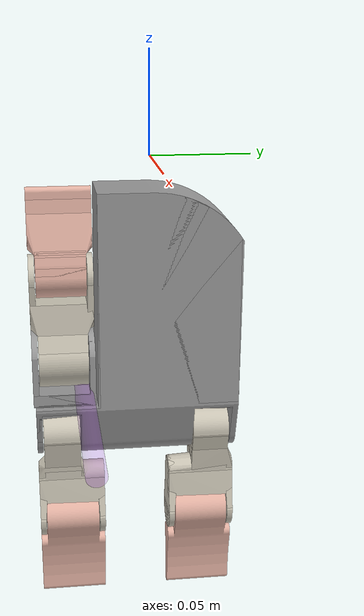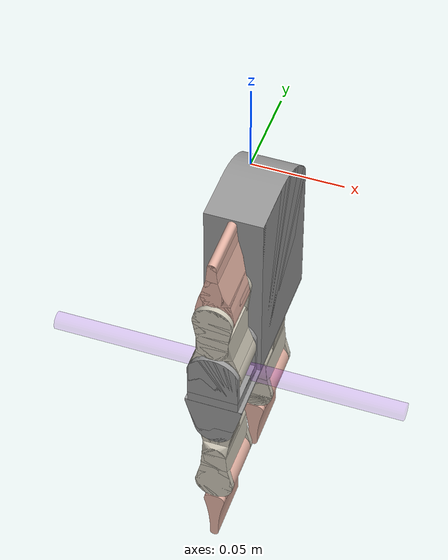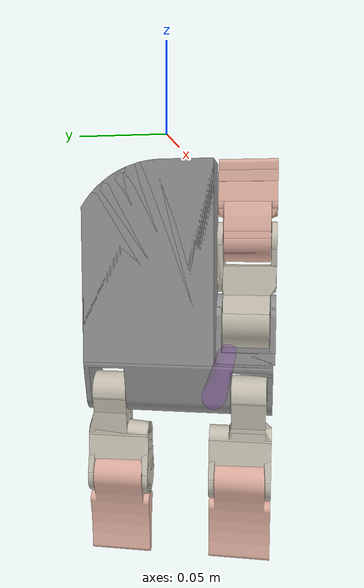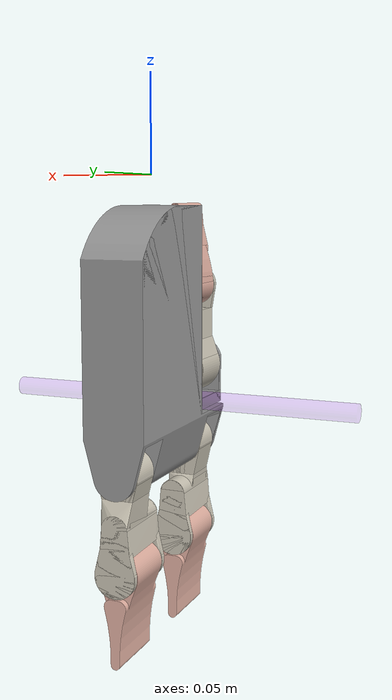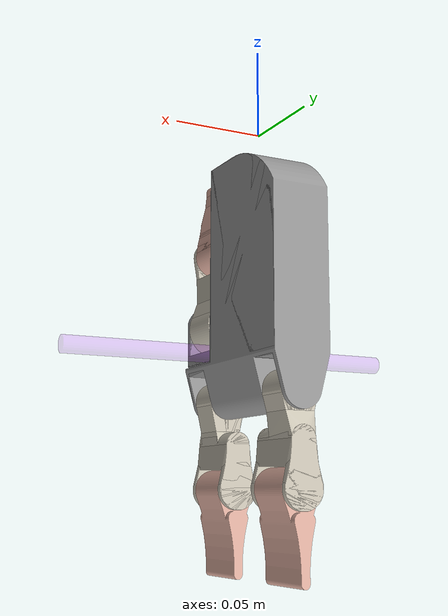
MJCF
<mujoco model="onshape">
    <compiler angle="radian" timestep="0.002"/>
    <size njmax="500" nconmax="100"/>

    <asset>
        <mesh name="palm" file="meshes/sslim_hand/palm.stl"/>
        <mesh name="thumb_base" file="meshes/sslim_hand/thumb_base.stl"/>
        <mesh name="thumb_proximal" file="meshes/sslim_hand/thumb_proximal.stl"/>
        <mesh name="thumb_distal" file="meshes/sslim_hand/thumb_distal.stl"/>
        <mesh name="proximal_left" file="meshes/sslim_hand/proximal_left.stl"/>
        <mesh name="distal_left" file="meshes/sslim_hand/distal_left.stl"/>
        <mesh name="proximal_right" file="meshes/sslim_hand/proximal_right.stl"/>
        <mesh name="distal_right" file="meshes/sslim_hand/distal_right.stl"/>

        <mesh name="palm_col_0" file="meshes/sslim_hand/palm_convex_piece_0.stl"/>
        <mesh name="palm_col_1" file="meshes/sslim_hand/palm_convex_piece_1.stl"/>
        <mesh name="palm_col_2" file="meshes/sslim_hand/palm_convex_piece_2.stl"/>
        <mesh name="palm_col_3" file="meshes/sslim_hand/palm_convex_piece_3.stl"/>
        <mesh name="palm_col_4" file="meshes/sslim_hand/palm_convex_piece_4.stl"/>
        <mesh name="palm_col_5" file="meshes/sslim_hand/palm_convex_piece_5.stl"/>
        <mesh name="palm_col_6" file="meshes/sslim_hand/palm_convex_piece_6.stl"/>

        <mesh name="thumb_base_col_0" file="meshes/sslim_hand/thumb_base_convex_piece_0.stl"/>
        <mesh name="thumb_base_col_1" file="meshes/sslim_hand/thumb_base_convex_piece_1.stl"/>
        <mesh name="thumb_base_col_2" file="meshes/sslim_hand/thumb_base_convex_piece_2.stl"/>

        <mesh name="thumb_proximal_col_0" file="meshes/sslim_hand/thumb_proximal_convex_piece_0.stl"/>
        <mesh name="thumb_proximal_col_1" file="meshes/sslim_hand/thumb_proximal_convex_piece_1.stl"/>
        <mesh name="thumb_proximal_col_2" file="meshes/sslim_hand/thumb_proximal_convex_piece_2.stl"/>
        <mesh name="thumb_proximal_col_3" file="meshes/sslim_hand/thumb_proximal_convex_piece_3.stl"/>

        <mesh name="thumb_distal_col_0" file="meshes/sslim_hand/thumb_distal_convex_piece_0.stl"/>
        <mesh name="thumb_distal_col_1" file="meshes/sslim_hand/thumb_distal_convex_piece_1.stl"/>
        <mesh name="thumb_distal_col_2" file="meshes/sslim_hand/thumb_distal_convex_piece_2.stl"/>
        <mesh name="thumb_distal_col_3" file="meshes/sslim_hand/thumb_distal_convex_piece_3.stl"/>
        <mesh name="thumb_distal_col_4" file="meshes/sslim_hand/thumb_distal_convex_piece_4.stl"/>

        <mesh name="proximal_left_col_0" file="meshes/sslim_hand/proximal_left_convex_piece_0.stl"/>
        <mesh name="proximal_left_col_1" file="meshes/sslim_hand/proximal_left_convex_piece_1.stl"/>
        <mesh name="proximal_left_col_2" file="meshes/sslim_hand/proximal_left_convex_piece_2.stl"/>
        <mesh name="proximal_left_col_3" file="meshes/sslim_hand/proximal_left_convex_piece_3.stl"/>
        <mesh name="proximal_left_col_4" file="meshes/sslim_hand/proximal_left_convex_piece_4.stl"/>
        <mesh name="proximal_left_col_5" file="meshes/sslim_hand/proximal_left_convex_piece_5.stl"/>

        <mesh name="proximal_right_col_0" file="meshes/sslim_hand/proximal_right_convex_piece_0.stl"/>
        <mesh name="proximal_right_col_1" file="meshes/sslim_hand/proximal_right_convex_piece_1.stl"/>
        <mesh name="proximal_right_col_2" file="meshes/sslim_hand/proximal_right_convex_piece_2.stl"/>
        <mesh name="proximal_right_col_3" file="meshes/sslim_hand/proximal_right_convex_piece_3.stl"/>
        <mesh name="proximal_right_col_4" file="meshes/sslim_hand/proximal_right_convex_piece_4.stl"/>
        <mesh name="proximal_right_col_5" file="meshes/sslim_hand/proximal_right_convex_piece_5.stl"/>
    </asset>

    <actuator>
        <position ctrllimited="true" ctrlrange="-1.83 1.83" joint="proximalLeftJoint" kp="1" name="proximalLeftJoint" forcelimited="true" forcerange="-2 2"/>
        <position ctrllimited="true" ctrlrange="-1.4 1.4" joint="distalLeftJoint" kp="0.1" name="distalLeftJoint" forcelimited="true" forcerange="-2 2"/>
        <position ctrllimited="true" ctrlrange="-1.83 1.83" joint="proximalRightJoint" kp="1" name="proximalRightJoint" forcelimited="true" forcerange="-2 2"/>
        <position ctrllimited="true" ctrlrange="-1.4 1.4" joint="distalRightJoint" kp="0.1" name="distalRightJoint" forcelimited="true" forcerange="-2 2"/>
        <position ctrllimited="true" ctrlrange="-0.044 0" joint="thumbSlideJoint" kp="10000" name="thumbSlideJoint" forcelimited="false"/>
        <position ctrllimited="true" ctrlrange="-1.83 1.83" joint="thumbProximalJoint" kp="1" name="thumbProximalJoint" forcelimited="true" forcerange="-2 2"/>
        <position ctrllimited="true" ctrlrange="-1.4 1.4" joint="thumbDistalJoint" kp="0.01" name="thumbDistalJoint" forcelimited="true" forcerange="-2 2"/>x\
    </actuator>

    <worldbody>

    <body name="palm" pos="0 0.045 -0.04" quat="0 0 0.7071068 0.7071068">
        <site name="ft_frame" pos="0 -0.06 0" size="0.01 0.01 0.01" rgba="1 0 0 0" type="sphere" group="1"/>
        <site name="grip_site" pos="0 -0.08 0" size="0.01 0.01 0.01" rgba="1 0 0 0" type="sphere" group="1"/>
        <site name="grip_site_cylinder" pos="0 -0.08 -0.08" quat="0.707107 0 0.707107 0" size="0.005 .1" rgba=".627 .125 .941 .2" type="cylinder" group="1"/>
        <inertial pos="0 -0.0438654 -0.039785" quat="0.669686 0.742644 0 0" mass="0.352386" diaginertia="0.000671316 0.000534497 0.000195499"/>
        <geom pos="0 -0.1055 -0.0875" quat="0.707107 0.707107 0 0" type="mesh" contype="0" conaffinity="0" group="1" rgba="0.6 0.6 0.6 1" mesh="palm"/>
        <geom pos="0 -0.1055 -0.0875" quat="0.707107 0.707107 0 0" type="mesh" rgba="0.6 0.6 0.6 1" condim="6" friction="1 1 .1" mesh="palm_col_2"/>
        <geom pos="0 -0.1055 -0.0875" quat="0.707107 0.707107 0 0" type="mesh" rgba="0.6 0.6 0.6 1" condim="6" friction="1 1 .1" mesh="palm_col_4"/>
        <geom pos="0 -0.1055 -0.0875" quat="0.707107 0.707107 0 0" type="mesh" rgba="0.6 0.6 0.6 1" condim="6" friction="1 1 .1" mesh="palm_col_5"/>
        <geom pos="0 -0.1055 -0.0875" quat="0.707107 0.707107 0 0" type="mesh" rgba="0.6 0.6 0.6 1" condim="6" friction="1 1 .1" mesh="palm_col_6"/>

        <body name="thumb_base" pos="0.0142521 -0.08499997 -0.106" quat="0.707107 0.707107 0 0">
            <inertial pos="-0.0142521 0.016 -0.0109991" quat="0.707107 0.707107 0 0" mass="0.0122697" diaginertia="3.06385e-06 2.54829e-06 2.11072e-06"/>
            <joint name="thumbSlideJoint" pos="0 0 0" axis="0 0 1" type="slide" limited="true" damping="10000" range="-0.044 0"/>
            <geom pos="-0.0142521 0.0175 0.0195" type="mesh" contype="0" conaffinity="0" group="1" rgba="0.6 0.6 0.6 1" mesh="thumb_base"/>
            <geom pos="-0.0142521 0.0175 0.0195" type="mesh" rgba="0.6 0.6 0.6 1" condim="6" friction="1 1 .1" mesh="thumb_base_col_0"/>
            <geom pos="-0.0142521 0.0175 0.0195" type="mesh" rgba="0.6 0.6 0.6 1" condim="6" friction="1 1 .1" mesh="thumb_base_col_1"/>
            <geom pos="-0.0142521 0.0175 0.0195" type="mesh" rgba="0.6 0.6 0.6 1" condim="6" friction="1 1 .1" mesh="thumb_base_col_2"/>

            <body name="thumb_proximal" pos="-0.0142521 0.0034 -0.022" quat="0.707107 0.707107 0 0">
                <inertial pos="0 -0.0109598 -0.0126" quat="0.707107 0.707107 0 0" mass="0.0355556" diaginertia="1.13326e-05 1.03218e-05 4.29813e-06"/>
                <joint name="thumbProximalJoint" pos="0 0 0" axis="0 0 1" limited="true" damping="0.1" range="-1.91986 1.91986"/>
                <geom pos="0 0.0415 -0.0141" quat="0.707107 -0.707107 0 0" type="mesh" contype="0" conaffinity="0" group="1" rgba="0.8 0.776471 0.713726 1" mesh="thumb_proximal"/>
                <geom pos="0 0.0415 -0.0141" quat="0.707107 -0.707107 0 0" type="mesh" rgba="0.8 0.776471 0.713726 1" condim="6" friction="1 1 .1" mesh="thumb_proximal_col_0"/>
                <geom pos="0 0.0415 -0.0141" quat="0.707107 -0.707107 0 0" type="mesh" rgba="0.8 0.776471 0.713726 1" condim="6" friction="1 1 .1" mesh="thumb_proximal_col_1"/>
                <geom pos="0 0.0415 -0.0141" quat="0.707107 -0.707107 0 0" type="mesh" rgba="0.8 0.776471 0.713726 1" condim="6" friction="1 1 .1" mesh="thumb_proximal_col_2"/>
                <geom pos="0 0.0415 -0.0141" quat="0.707107 -0.707107 0 0" type="mesh" rgba="0.8 0.776471 0.713726 1" condim="6" friction="1 1 .1" mesh="thumb_proximal_col_3"/>

                <body name="thumb_distal" pos="0 -0.044 0" >
                    <inertial pos="0 -0.0121122 -0.0126" quat="0.707107 0.707107 0 0" mass="0.0239353" diaginertia="6.19262e-06 5.18231e-06 2.11386e-06"/>
                    <joint name="thumbDistalJoint" pos="0 0 0" axis="0 0 1" limited="true" damping="0.1" range="-1.91986 1.91986"/>
                    <geom pos="0 0.0855 -0.0141" quat="0.707107 -0.707107 0 0" type="mesh" contype="0" conaffinity="0"  group="1" rgba="0.890196 0.698039 0.639216 1" mesh="thumb_distal"/>
                    <geom pos="0 0.0855 -0.0141" quat="0.707107 -0.707107 0 0" type="mesh" rgba="0.890196 0.698039 0.639216 1" condim="6" friction="1 1 .1" mesh="thumb_distal_col_0"/>
                    <geom pos="0 0.0855 -0.0141" quat="0.707107 -0.707107 0 0" type="mesh" rgba="0.890196 0.698039 0.639216 1" condim="6" friction="1 1 .1" mesh="thumb_distal_col_1"/>
                    <geom pos="0 0.0855 -0.0141" quat="0.707107 -0.707107 0 0" type="mesh" rgba="0.890196 0.698039 0.639216 1" condim="6" friction="1 1 .1" mesh="thumb_distal_col_2"/>
                    <geom pos="0 0.0855 -0.0141" quat="0.707107 -0.707107 0 0" type="mesh" rgba="0.890196 0.698039 0.639216 1" condim="6" friction="1 1 .1" mesh="thumb_distal_col_3"/>
                    <geom pos="0 0.0855 -0.0141" quat="0.707107 -0.707107 0 0" type="mesh" rgba="0.890196 0.698039 0.639216 1" condim="6" friction="1 1 .1" mesh="thumb_distal_col_4"/>
                </body>
            </body>
        </body>

        <body name="proximal_left" pos="0 -0.1055 -0.0034">
            <inertial pos="-3.43653e-07 -0.0200027 -0.0120147" quat="0.650105 0.759844 -1.69933e-05 -9.38432e-06" mass="0.026416" diaginertia="1.01704e-05 8.54389e-06 2.9137e-06"/>
            <joint name="proximalLeftJoint" pos="0 0 0" axis="0 0 1" limited="true" damping="0.1" range="-1.91986 1.91986"/>
            <geom pos="0 0 -0.0841" quat="0.707107 0.707107 0 0" type="mesh" contype="0" conaffinity="0"  group="1" rgba="0.8 0.776471 0.713726 1" mesh="proximal_left"/>
            <geom pos="0 0 -0.0841" quat="0.707107 0.707107 0 0" type="mesh" rgba="0.8 0.776471 0.713726 1" condim="6" friction="1 1 .1" mesh="proximal_left_col_0"/>
            <geom pos="0 0 -0.0841" quat="0.707107 0.707107 0 0" type="mesh" rgba="0.8 0.776471 0.713726 1" condim="6" friction="1 1 .1" mesh="proximal_left_col_1"/>
            <geom pos="0 0 -0.0841" quat="0.707107 0.707107 0 0" type="mesh" rgba="0.8 0.776471 0.713726 1" condim="6" friction="1 1 .1" mesh="proximal_left_col_2"/>
            <geom pos="0 0 -0.0841" quat="0.707107 0.707107 0 0" type="mesh" rgba="0.8 0.776471 0.713726 1" condim="6" friction="1 1 .1" mesh="proximal_left_col_3"/>
            <geom pos="0 0 -0.0841" quat="0.707107 0.707107 0 0" type="mesh" rgba="0.8 0.776471 0.713726 1" condim="6" friction="1 1 .1" mesh="proximal_left_col_4"/>
            <geom pos="0 0 -0.0841" quat="0.707107 0.707107 0 0" type="mesh" rgba="0.8 0.776471 0.713726 1" condim="6" friction="1 1 .1" mesh="proximal_left_col_5"/>

            <body name="distal_left" pos="0 -0.05 0">
                <inertial pos="0 -0.0120522 -0.0141" quat="0.707107 0.707107 0 0" mass="0.0245925" diaginertia="7.49241e-06 5.96896e-06 2.50703e-06"/>
                <joint name="distalLeftJoint" pos="0 0 0" axis="0 0 1" limited="true" damping="0.1" range="-1.91986 1.91986"/>
                <geom pos="0 0.05 -0.0841" quat="0.707107 0.707107 0 0" type="mesh" contype="0" conaffinity="0" group="1" rgba="0.890196 0.698039 0.639216 1" mesh="distal_left"/>
                <!-- add a box for collision -->
                <geom pos="0 0.05 -0.0841" quat="0.707107 0.707107 0 0" type="mesh" rgba="0.890196 0.698039 0.639216 1" condim="6" friction="1 1 .1" mesh="distal_left"/>
            </body>
        </body>
        <body name="proximal_right" pos="0 -0.1055 -0.0824">
            <inertial pos="-3.43653e-07 -0.0200027 -0.00718527" quat="0.759844 0.650105 -9.38432e-06 -1.69933e-05" mass="0.026416" diaginertia="1.01704e-05 8.54389e-06 2.9137e-06"/>
            <joint name="proximalRightJoint" pos="0 0 0" axis="0 0 1" limited="true" damping="0.1" range="-1.91986 1.91986"/>
            <geom pos="0 0 -0.0051" quat="0.707107 0.707107 0 0" type="mesh" contype="0" conaffinity="0" group="1" rgba="0.8 0.776471 0.713726 1" mesh="proximal_right"/>
            <geom pos="0 0 -0.0051" quat="0.707107 0.707107 0 0" type="mesh" rgba="0.8 0.776471 0.713726 1" condim="6" friction="1 1 .1" mesh="proximal_right_col_0"/>
            <geom pos="0 0 -0.0051" quat="0.707107 0.707107 0 0" type="mesh" rgba="0.8 0.776471 0.713726 1" condim="6" friction="1 1 .1" mesh="proximal_right_col_1"/>
            <geom pos="0 0 -0.0051" quat="0.707107 0.707107 0 0" type="mesh" rgba="0.8 0.776471 0.713726 1" condim="6" friction="1 1 .1" mesh="proximal_right_col_2"/>
            <geom pos="0 0 -0.0051" quat="0.707107 0.707107 0 0" type="mesh" rgba="0.8 0.776471 0.713726 1" condim="6" friction="1 1 .1" mesh="proximal_right_col_3"/>
            <geom pos="0 0 -0.0051" quat="0.707107 0.707107 0 0" type="mesh" rgba="0.8 0.776471 0.713726 1" condim="6" friction="1 1 .1" mesh="proximal_right_col_4"/>
            <geom pos="0 0 -0.0051" quat="0.707107 0.707107 0 0" type="mesh" rgba="0.8 0.776471 0.713726 1" condim="6" friction="1 1 .1" mesh="proximal_right_col_5"/>

            <body name="distal_right" pos="0 -0.05 0.009" quat="0 0 0 1">
                <inertial pos="0 0.0120522 -0.0141" quat="0.707107 0.707107 0 0" mass="0.0245925" diaginertia="7.49241e-06 5.96896e-06 2.50703e-06"/>
                <joint name="distalRightJoint" pos="0 0 0" axis="0 0 1" limited="true" damping="0.1" range="-1.91986 1.91986"/>
                <geom pos="0 -0.05 -0.0141" quat="0.707107 -0.707107 0 0" type="mesh" contype="0" conaffinity="0" group="1" rgba="0.890196 0.698039 0.639216 1" mesh="distal_right"/>
                <geom pos="0 -0.05 -0.0141" quat="0.707107 -0.707107 0 0" type="mesh" rgba="0.890196 0.698039 0.639216 1" condim="6" friction="1 1 .1" mesh="distal_right"/>
            </body>
        </body>
    </body>

    </worldbody>
    <sensor>
        <force name="force_ee" site="ft_frame"/>
        <torque name="torque_ee" site="ft_frame"/>
    </sensor>
</mujoco>
